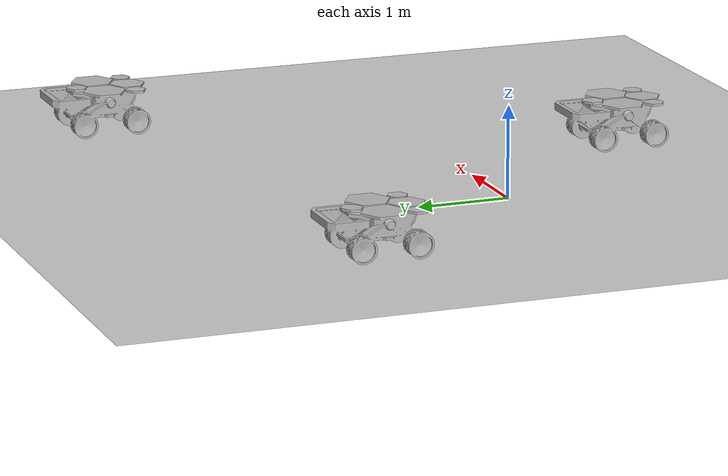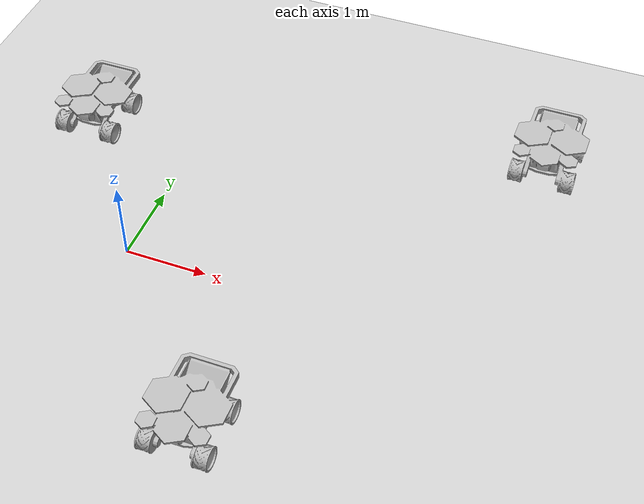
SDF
<sdf version="1.7">
 <world name="default">
  <light name="sun" type="directional">
   <pose>0 0 10 0 -0 0</pose>
   <diffuse>0.8 0.8 0.8 1</diffuse>
   <specular>0.2 0.2 0.2 1</specular>
   <attenuation>
    <range>1000</range>
    <constant>0.9</constant>
    <linear>0.01</linear>
    <quadratic>0.001</quadratic>
   </attenuation>
   <direction>-0.5 0.1 -0.9</direction>
   <spot><inner_angle>0</inner_angle><outer_angle>0</outer_angle><falloff>0</falloff></spot>
  </light>
  <model name="ground_plane">
   <static>1</static>
   <link name="link">
    <collision name="collision">
     <geometry><plane><normal>0 0 1</normal><size>100 100</size></plane></geometry>
     <surface><friction><ode><mu>100</mu><mu2>50</mu2></ode></friction></surface>
    </collision>
    <visual name="visual">
     <cast_shadows>0</cast_shadows>
     <geometry><plane><normal>0 0 1</normal><size>100 100</size></plane></geometry>
     <material>
      <script><uri>file://media/materials/scripts/gazebo.material</uri><name>Gazebo/Grey</name></script>
     </material>
    </visual>
   </link>
  </model>
  <gravity>0 0 -9.8</gravity>
  <magnetic_field>6e-06 2.3e-05 -4.2e-05</magnetic_field>
  <atmosphere type="adiabatic"/>
  <physics type="ode">
   <max_step_size>0.001</max_step_size>
   <real_time_factor>1</real_time_factor>
   <real_time_update_rate>1000</real_time_update_rate>
  </physics>
  <scene><ambient>0.4 0.4 0.4 1</ambient><background>0.7 0.7 0.7 1</background><shadows>1</shadows></scene>
  <spherical_coordinates>
   <surface_model>EARTH_WGS84</surface_model>
   <latitude_deg>0</latitude_deg>
   <longitude_deg>0</longitude_deg>
   <elevation>0</elevation>
   <heading_deg>0</heading_deg>
  </spherical_coordinates>
  <model name="mars_rover">
   <static>1</static>
   <link name="link">
    <collision name="solar_panel_collision">
     <pose>0 -0.06945 0.47293 0 -0 0</pose>
     <geometry><box><size>0.87974 0.8821 0.02602</size></box></geometry>
    </collision>
    <collision name="chassis_collision">
     <pose>0 -0.05 0.31475 0 -0 0</pose>
     <geometry><box><size>0.49522 0.67401 0.28915</size></box></geometry>
    </collision>
    <collision name="rear_left_bumper_collision">
     <pose>0.30107 0.3835 0.38976 0 -0 0</pose>
     <geometry><box><size>0.04442 0.38897 0.07918</size></box></geometry>
    </collision>
    <collision name="rear_right_bumper_collision">
     <pose>-0.30107 0.3835 0.38976 0 -0 0</pose>
     <geometry><box><size>0.04442 0.38897 0.07918</size></box></geometry>
    </collision>
    <collision name="rear_bumper_collision">
     <pose>0 0.59414 0.38976 0 -0 0</pose>
     <geometry><box><size>0.56656 0.04442 0.07918</size></box></geometry>
    </collision>
    <collision name="bin_back_panel_collision">
     <pose>0 0.47 0.32114 0.69137 -0 0</pose>
     <geometry><box><size>0.43774 0.212366 0.05173</size></box></geometry>
    </collision>
    <collision name="bin_left_panel_collision1">
     <pose>0.22615 0.32897 0.33193 0 -0 0</pose>
     <geometry><box><size>0.01116 0.19338 0.16304</size></box></geometry>
    </collision>
    <collision name="bin_left_panel_collision2">
     <pose>0.22615 0.471 0.39308 0 -0 0</pose>
     <geometry><box><size>0.01116 0.15 0.04</size></box></geometry>
    </collision>
    <collision name="bin_left_panel_collision3">
     <pose>0.22615 0.45 0.35308 0 -0 0</pose>
     <geometry><box><size>0.01116 0.15 0.04</size></box></geometry>
    </collision>
    <collision name="bin_left_panel_collision4">
     <pose>0.22615 0.39308 0.31308 0 -0 0</pose>
     <geometry><box><size>0.01116 0.15 0.04</size></box></geometry>
    </collision>
    <collision name="bin_right_panel_collision1">
     <pose>-0.22615 0.32897 0.33193 0 -0 0</pose>
     <geometry><box><size>0.01116 0.19338 0.16304</size></box></geometry>
    </collision>
    <collision name="bin_right_panel_collision2">
     <pose>-0.22615 0.471 0.39308 0 -0 0</pose>
     <geometry><box><size>0.01116 0.15 0.04</size></box></geometry>
    </collision>
    <collision name="bin_right_panel_collision3">
     <pose>-0.22615 0.45 0.35308 0 -0 0</pose>
     <geometry><box><size>0.01116 0.15 0.04</size></box></geometry>
    </collision>
    <collision name="bin_right_panel_collision4">
     <pose>-0.22615 0.39308 0.31308 0 -0 0</pose>
     <geometry><box><size>0.01116 0.15 0.04</size></box></geometry>
    </collision>
    <collision name="bin_front_panel_collision">
     <pose>0 0.30047 0.32114 2.26207 -0 0</pose>
     <geometry><box><size>0.43774 0.212366 0.05173</size></box></geometry>
    </collision>
    <collision name="front_left_wheel_collision">
     <pose>0.31103 -0.32115 0.1358 1.5707 0 1.5707</pose>
     <geometry><cylinder><radius>0.1358</radius><length>0.1641</length></cylinder></geometry>
    </collision>
    <collision name="front_right_wheel_collision">
     <pose>-0.31103 -0.32115 0.1358 1.5707 0 1.5707</pose>
     <geometry><cylinder><radius>0.1358</radius><length>0.1641</length></cylinder></geometry>
    </collision>
    <collision name="rear_left_wheel_collision">
     <pose>0.31103 0.28049 0.1358 1.5707 0 1.5707</pose>
     <geometry><cylinder><radius>0.1358</radius><length>0.1641</length></cylinder></geometry>
    </collision>
    <collision name="rear_right_wheel_collision">
     <pose>-0.31103 0.28049 0.1358 1.5707 0 1.5707</pose>
     <geometry><cylinder><radius>0.1358</radius><length>0.1641</length></cylinder></geometry>
    </collision>
    <visual name="visual">
     <geometry><mesh><uri>model://mars_rover/meshes/rover.dae</uri></mesh></geometry>
    </visual>
   </link>
   <pose>4.22903 3.11297 0 0 -0 0</pose>
  </model>
  <model name="mars_rover_0">
   <static>1</static>
   <link name="link">
    <collision name="solar_panel_collision">
     <pose>0 -0.06945 0.47293 0 -0 0</pose>
     <geometry><box><size>0.87974 0.8821 0.02602</size></box></geometry>
    </collision>
    <collision name="chassis_collision">
     <pose>0 -0.05 0.31475 0 -0 0</pose>
     <geometry><box><size>0.49522 0.67401 0.28915</size></box></geometry>
    </collision>
    <collision name="rear_left_bumper_collision">
     <pose>0.30107 0.3835 0.38976 0 -0 0</pose>
     <geometry><box><size>0.04442 0.38897 0.07918</size></box></geometry>
    </collision>
    <collision name="rear_right_bumper_collision">
     <pose>-0.30107 0.3835 0.38976 0 -0 0</pose>
     <geometry><box><size>0.04442 0.38897 0.07918</size></box></geometry>
    </collision>
    <collision name="rear_bumper_collision">
     <pose>0 0.59414 0.38976 0 -0 0</pose>
     <geometry><box><size>0.56656 0.04442 0.07918</size></box></geometry>
    </collision>
    <collision name="bin_back_panel_collision">
     <pose>0 0.47 0.32114 0.69137 -0 0</pose>
     <geometry><box><size>0.43774 0.212366 0.05173</size></box></geometry>
    </collision>
    <collision name="bin_left_panel_collision1">
     <pose>0.22615 0.32897 0.33193 0 -0 0</pose>
     <geometry><box><size>0.01116 0.19338 0.16304</size></box></geometry>
    </collision>
    <collision name="bin_left_panel_collision2">
     <pose>0.22615 0.471 0.39308 0 -0 0</pose>
     <geometry><box><size>0.01116 0.15 0.04</size></box></geometry>
    </collision>
    <collision name="bin_left_panel_collision3">
     <pose>0.22615 0.45 0.35308 0 -0 0</pose>
     <geometry><box><size>0.01116 0.15 0.04</size></box></geometry>
    </collision>
    <collision name="bin_left_panel_collision4">
     <pose>0.22615 0.39308 0.31308 0 -0 0</pose>
     <geometry><box><size>0.01116 0.15 0.04</size></box></geometry>
    </collision>
    <collision name="bin_right_panel_collision1">
     <pose>-0.22615 0.32897 0.33193 0 -0 0</pose>
     <geometry><box><size>0.01116 0.19338 0.16304</size></box></geometry>
    </collision>
    <collision name="bin_right_panel_collision2">
     <pose>-0.22615 0.471 0.39308 0 -0 0</pose>
     <geometry><box><size>0.01116 0.15 0.04</size></box></geometry>
    </collision>
    <collision name="bin_right_panel_collision3">
     <pose>-0.22615 0.45 0.35308 0 -0 0</pose>
     <geometry><box><size>0.01116 0.15 0.04</size></box></geometry>
    </collision>
    <collision name="bin_right_panel_collision4">
     <pose>-0.22615 0.39308 0.31308 0 -0 0</pose>
     <geometry><box><size>0.01116 0.15 0.04</size></box></geometry>
    </collision>
    <collision name="bin_front_panel_collision">
     <pose>0 0.30047 0.32114 2.26207 -0 0</pose>
     <geometry><box><size>0.43774 0.212366 0.05173</size></box></geometry>
    </collision>
    <collision name="front_left_wheel_collision">
     <pose>0.31103 -0.32115 0.1358 1.5707 0 1.5707</pose>
     <geometry><cylinder><radius>0.1358</radius><length>0.1641</length></cylinder></geometry>
    </collision>
    <collision name="front_right_wheel_collision">
     <pose>-0.31103 -0.32115 0.1358 1.5707 0 1.5707</pose>
     <geometry><cylinder><radius>0.1358</radius><length>0.1641</length></cylinder></geometry>
    </collision>
    <collision name="rear_left_wheel_collision">
     <pose>0.31103 0.28049 0.1358 1.5707 0 1.5707</pose>
     <geometry><cylinder><radius>0.1358</radius><length>0.1641</length></cylinder></geometry>
    </collision>
    <collision name="rear_right_wheel_collision">
     <pose>-0.31103 0.28049 0.1358 1.5707 0 1.5707</pose>
     <geometry><cylinder><radius>0.1358</radius><length>0.1641</length></cylinder></geometry>
    </collision>
    <visual name="visual">
     <geometry><mesh><uri>model://mars_rover/meshes/rover.dae</uri></mesh></geometry>
    </visual>
   </link>
   <pose>1.73421 -1.98089 0 0 -0 0</pose>
  </model>
  <model name="mars_rover_1">
   <static>1</static>
   <link name="link">
    <collision name="solar_panel_collision">
     <pose>0 -0.06945 0.47293 0 -0 0</pose>
     <geometry><box><size>0.87974 0.8821 0.02602</size></box></geometry>
    </collision>
    <collision name="chassis_collision">
     <pose>0 -0.05 0.31475 0 -0 0</pose>
     <geometry><box><size>0.49522 0.67401 0.28915</size></box></geometry>
    </collision>
    <collision name="rear_left_bumper_collision">
     <pose>0.30107 0.3835 0.38976 0 -0 0</pose>
     <geometry><box><size>0.04442 0.38897 0.07918</size></box></geometry>
    </collision>
    <collision name="rear_right_bumper_collision">
     <pose>-0.30107 0.3835 0.38976 0 -0 0</pose>
     <geometry><box><size>0.04442 0.38897 0.07918</size></box></geometry>
    </collision>
    <collision name="rear_bumper_collision">
     <pose>0 0.59414 0.38976 0 -0 0</pose>
     <geometry><box><size>0.56656 0.04442 0.07918</size></box></geometry>
    </collision>
    <collision name="bin_back_panel_collision">
     <pose>0 0.47 0.32114 0.69137 -0 0</pose>
     <geometry><box><size>0.43774 0.212366 0.05173</size></box></geometry>
    </collision>
    <collision name="bin_left_panel_collision1">
     <pose>0.22615 0.32897 0.33193 0 -0 0</pose>
     <geometry><box><size>0.01116 0.19338 0.16304</size></box></geometry>
    </collision>
    <collision name="bin_left_panel_collision2">
     <pose>0.22615 0.471 0.39308 0 -0 0</pose>
     <geometry><box><size>0.01116 0.15 0.04</size></box></geometry>
    </collision>
    <collision name="bin_left_panel_collision3">
     <pose>0.22615 0.45 0.35308 0 -0 0</pose>
     <geometry><box><size>0.01116 0.15 0.04</size></box></geometry>
    </collision>
    <collision name="bin_left_panel_collision4">
     <pose>0.22615 0.39308 0.31308 0 -0 0</pose>
     <geometry><box><size>0.01116 0.15 0.04</size></box></geometry>
    </collision>
    <collision name="bin_right_panel_collision1">
     <pose>-0.22615 0.32897 0.33193 0 -0 0</pose>
     <geometry><box><size>0.01116 0.19338 0.16304</size></box></geometry>
    </collision>
    <collision name="bin_right_panel_collision2">
     <pose>-0.22615 0.471 0.39308 0 -0 0</pose>
     <geometry><box><size>0.01116 0.15 0.04</size></box></geometry>
    </collision>
    <collision name="bin_right_panel_collision3">
     <pose>-0.22615 0.45 0.35308 0 -0 0</pose>
     <geometry><box><size>0.01116 0.15 0.04</size></box></geometry>
    </collision>
    <collision name="bin_right_panel_collision4">
     <pose>-0.22615 0.39308 0.31308 0 -0 0</pose>
     <geometry><box><size>0.01116 0.15 0.04</size></box></geometry>
    </collision>
    <collision name="bin_front_panel_collision">
     <pose>0 0.30047 0.32114 2.26207 -0 0</pose>
     <geometry><box><size>0.43774 0.212366 0.05173</size></box></geometry>
    </collision>
    <collision name="front_left_wheel_collision">
     <pose>0.31103 -0.32115 0.1358 1.5707 0 1.5707</pose>
     <geometry><cylinder><radius>0.1358</radius><length>0.1641</length></cylinder></geometry>
    </collision>
    <collision name="front_right_wheel_collision">
     <pose>-0.31103 -0.32115 0.1358 1.5707 0 1.5707</pose>
     <geometry><cylinder><radius>0.1358</radius><length>0.1641</length></cylinder></geometry>
    </collision>
    <collision name="rear_left_wheel_collision">
     <pose>0.31103 0.28049 0.1358 1.5707 0 1.5707</pose>
     <geometry><cylinder><radius>0.1358</radius><length>0.1641</length></cylinder></geometry>
    </collision>
    <collision name="rear_right_wheel_collision">
     <pose>-0.31103 0.28049 0.1358 1.5707 0 1.5707</pose>
     <geometry><cylinder><radius>0.1358</radius><length>0.1641</length></cylinder></geometry>
    </collision>
    <visual name="visual">
     <geometry><mesh><uri>model://mars_rover/meshes/rover.dae</uri></mesh></geometry>
    </visual>
   </link>
   <pose>-1.37202 1.96963 0 0 -0 0</pose>
  </model>
  <plugin name="libGetElementPose" filename="libGetElementPose.so"/>
 </world>
</sdf>
